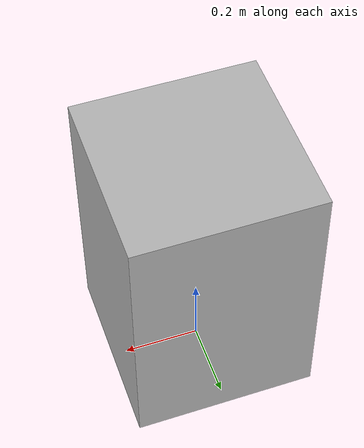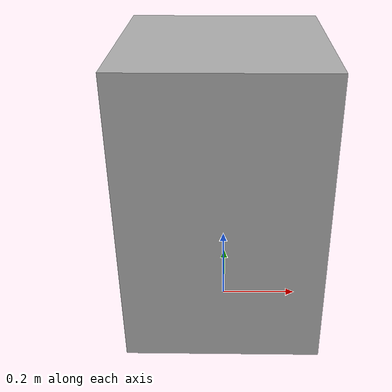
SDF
<?xml version="1.0" ?>
<sdf version="1.6">
  <model name="robotics_testlab_B/bed_cabinet">
    <link name="1">
      <collision name="1">
        <geometry>
          <box>
            <size>0.48 0.48 0.73</size>
          </box>
        </geometry>
        <name>1</name>
      </collision>
      <visual name="1">
        <geometry>
          <box>
            <size>0.48 0.48 0.73</size>
          </box>
        </geometry>
        <name>1</name>
      </visual>
      <pose>0 0 0.365 0 0 0</pose>
      <name>1</name>
    </link>
    <static>true</static>
    <name>robotics_testlab_B/bed_cabinet</name>
  </model>
</sdf>
